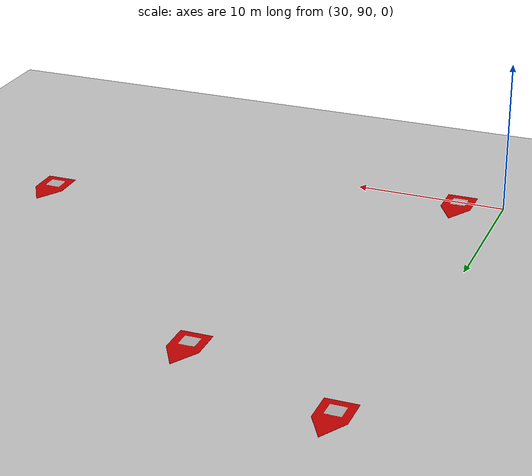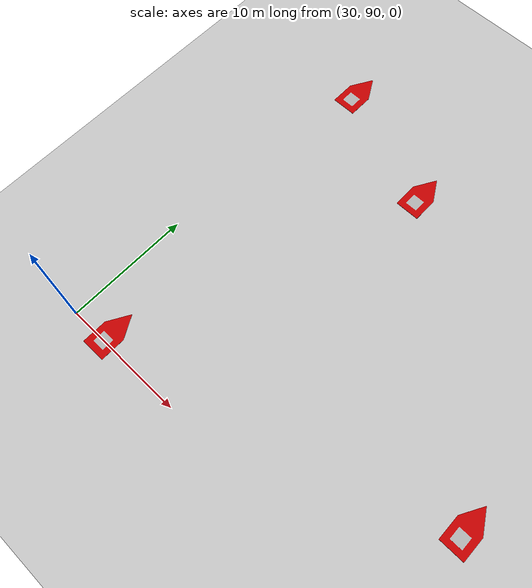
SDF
<sdf version="1.7">
 <world name="default">
  <model name="ground_plane">
   <static>1</static>
   <link name="link">
    <collision name="collision">
     <geometry><plane><normal>0 0 1</normal><size>5000 5000</size></plane></geometry>
     <surface><friction><ode><mu>1</mu><mu2>1</mu2></ode></friction></surface>
    </collision>
    <visual name="runway">
     <pose>0 0 0.005 0 0 -1.5707</pose>
     <cast_shadows>0</cast_shadows>
     <geometry><plane><normal>0 0 1</normal><size>1829 45</size></plane></geometry>
     <material>
      <script><uri>file://media/materials/scripts/gazebo.material</uri><name>Gazebo/Runway</name></script>
     </material>
    </visual>
    <visual name="grass">
     <pose>0 0 -0.1 0 -0 0</pose>
     <cast_shadows>0</cast_shadows>
     <geometry><plane><normal>0 0 1</normal><size>5000 5000</size></plane></geometry>
     <material>
      <script><uri>file://media/materials/scripts/gazebo.material</uri><name>Gazebo/Grass</name></script>
     </material>
    </visual>
   </link>
  </model>
  <model name="biao_12_0_clone_16_clone_0_clone_168">
   <link name="link_0">
    <inertial>
     <mass>1</mass>
     <inertia>
      <ixx>0.166667</ixx>
      <ixy>0</ixy>
      <ixz>0</ixz>
      <iyy>0.166667</iyy>
      <iyz>0</iyz>
      <izz>0.166667</izz>
     </inertia>
    </inertial>
    <visual name="visual">
     <geometry>
      <mesh><uri>/home/lzc/lzc-code/src/simulation/models/biao/12/12.dae</uri><scale>1 1 1</scale></mesh>
     </geometry>
    </visual>
    <collision name="collision">
     <geometry>
      <mesh><uri>/home/lzc/lzc-code/src/simulation/models/biao/12/12.dae</uri><scale>1 1 1</scale></mesh>
     </geometry>
     <surface>
      <friction>
       <ode><mu>1</mu><mu2>1</mu2><fdir1>0 0 0</fdir1><slip1>0</slip1><slip2>0</slip2></ode>
       <torsional>
        <coefficient>1</coefficient>
        <patch_radius>0</patch_radius>
        <surface_radius>0</surface_radius>
        <use_patch_radius>1</use_patch_radius>
        <ode><slip>0</slip></ode>
       </torsional>
      </friction>
      <bounce><restitution_coefficient>0</restitution_coefficient><threshold>1e+06</threshold></bounce>
      <contact>
       <collide_without_contact>0</collide_without_contact>
       <collide_without_contact_bitmask>1</collide_without_contact_bitmask>
       <collide_bitmask>1</collide_bitmask>
       <ode>
        <soft_cfm>0</soft_cfm>
        <soft_erp>0.2</soft_erp>
        <kp>1e+13</kp>
        <kd>1</kd>
        <max_vel>0.01</max_vel>
        <min_depth>0</min_depth>
       </ode>
       <bullet>
        <split_impulse>1</split_impulse>
        <split_impulse_penetration_threshold>-0.01</split_impulse_penetration_threshold>
        <soft_cfm>0</soft_cfm>
        <soft_erp>0.2</soft_erp>
        <kp>1e+13</kp>
        <kd>1</kd>
       </bullet>
      </contact>
     </surface>
    </collision>
   </link>
   <static>0</static>
   <pose>59.4779 97 0.011 0 -0 0</pose>
  </model>
  <model name="biao_12_0_clone_16_clone_0_clone_169">
   <link name="link_0">
    <inertial>
     <mass>1</mass>
     <inertia>
      <ixx>0.166667</ixx>
      <ixy>0</ixy>
      <ixz>0</ixz>
      <iyy>0.166667</iyy>
      <iyz>0</iyz>
      <izz>0.166667</izz>
     </inertia>
    </inertial>
    <visual name="visual">
     <geometry>
      <mesh><uri>/home/lzc/lzc-code/src/simulation/models/biao/12/12.dae</uri><scale>1 1 1</scale></mesh>
     </geometry>
    </visual>
    <collision name="collision">
     <geometry>
      <mesh><uri>/home/lzc/lzc-code/src/simulation/models/biao/12/12.dae</uri><scale>1 1 1</scale></mesh>
     </geometry>
     <surface>
      <friction>
       <ode><mu>1</mu><mu2>1</mu2><fdir1>0 0 0</fdir1><slip1>0</slip1><slip2>0</slip2></ode>
       <torsional>
        <coefficient>1</coefficient>
        <patch_radius>0</patch_radius>
        <surface_radius>0</surface_radius>
        <use_patch_radius>1</use_patch_radius>
        <ode><slip>0</slip></ode>
       </torsional>
      </friction>
      <bounce><restitution_coefficient>0</restitution_coefficient><threshold>1e+06</threshold></bounce>
      <contact>
       <collide_without_contact>0</collide_without_contact>
       <collide_without_contact_bitmask>1</collide_without_contact_bitmask>
       <collide_bitmask>1</collide_bitmask>
       <ode>
        <soft_cfm>0</soft_cfm>
        <soft_erp>0.2</soft_erp>
        <kp>1e+13</kp>
        <kd>1</kd>
        <max_vel>0.01</max_vel>
        <min_depth>0</min_depth>
       </ode>
       <bullet>
        <split_impulse>1</split_impulse>
        <split_impulse_penetration_threshold>-0.01</split_impulse_penetration_threshold>
        <soft_cfm>0</soft_cfm>
        <soft_erp>0.2</soft_erp>
        <kp>1e+13</kp>
        <kd>1</kd>
       </bullet>
      </contact>
     </surface>
    </collision>
   </link>
   <static>0</static>
   <pose>42 114 0.011 0 -0 0</pose>
  </model>
  <model name="biao_12_0_clone_16_clone_0_clone_170">
   <link name="link_0">
    <inertial>
     <mass>1</mass>
     <inertia>
      <ixx>0.166667</ixx>
      <ixy>0</ixy>
      <ixz>0</ixz>
      <iyy>0.166667</iyy>
      <iyz>0</iyz>
      <izz>0.166667</izz>
     </inertia>
    </inertial>
    <visual name="visual">
     <geometry>
      <mesh><uri>/home/lzc/lzc-code/src/simulation/models/biao/12/12.dae</uri><scale>1 1 1</scale></mesh>
     </geometry>
    </visual>
    <collision name="collision">
     <geometry>
      <mesh><uri>/home/lzc/lzc-code/src/simulation/models/biao/12/12.dae</uri><scale>1 1 1</scale></mesh>
     </geometry>
     <surface>
      <friction>
       <ode><mu>1</mu><mu2>1</mu2><fdir1>0 0 0</fdir1><slip1>0</slip1><slip2>0</slip2></ode>
       <torsional>
        <coefficient>1</coefficient>
        <patch_radius>0</patch_radius>
        <surface_radius>0</surface_radius>
        <use_patch_radius>1</use_patch_radius>
        <ode><slip>0</slip></ode>
       </torsional>
      </friction>
      <bounce><restitution_coefficient>0</restitution_coefficient><threshold>1e+06</threshold></bounce>
      <contact>
       <collide_without_contact>0</collide_without_contact>
       <collide_without_contact_bitmask>1</collide_without_contact_bitmask>
       <collide_bitmask>1</collide_bitmask>
       <ode>
        <soft_cfm>0</soft_cfm>
        <soft_erp>0.2</soft_erp>
        <kp>1e+13</kp>
        <kd>1</kd>
        <max_vel>0.01</max_vel>
        <min_depth>0</min_depth>
       </ode>
       <bullet>
        <split_impulse>1</split_impulse>
        <split_impulse_penetration_threshold>-0.01</split_impulse_penetration_threshold>
        <soft_cfm>0</soft_cfm>
        <soft_erp>0.2</soft_erp>
        <kp>1e+13</kp>
        <kd>1</kd>
       </bullet>
      </contact>
     </surface>
    </collision>
   </link>
   <static>0</static>
   <pose>32 118 0.010964 0 -0 0</pose>
  </model>
  <model name="biao_12_0_clone_16_clone_0_clone_188">
   <link name="link_0">
    <inertial>
     <mass>1</mass>
     <inertia>
      <ixx>0.166667</ixx>
      <ixy>0</ixy>
      <ixz>0</ixz>
      <iyy>0.166667</iyy>
      <iyz>0</iyz>
      <izz>0.166667</izz>
     </inertia>
    </inertial>
    <visual name="visual">
     <geometry>
      <mesh><uri>/home/lzc/lzc-code/src/simulation/models/biao/12/12.dae</uri><scale>1 1 1</scale></mesh>
     </geometry>
    </visual>
    <collision name="collision">
     <geometry>
      <mesh><uri>/home/lzc/lzc-code/src/simulation/models/biao/12/12.dae</uri><scale>1 1 1</scale></mesh>
     </geometry>
     <surface>
      <friction>
       <ode><mu>1</mu><mu2>1</mu2><fdir1>0 0 0</fdir1><slip1>0</slip1><slip2>0</slip2></ode>
       <torsional>
        <coefficient>1</coefficient>
        <patch_radius>0</patch_radius>
        <surface_radius>0</surface_radius>
        <use_patch_radius>1</use_patch_radius>
        <ode><slip>0</slip></ode>
       </torsional>
      </friction>
      <bounce><restitution_coefficient>0</restitution_coefficient><threshold>1e+06</threshold></bounce>
      <contact>
       <collide_without_contact>0</collide_without_contact>
       <collide_without_contact_bitmask>1</collide_without_contact_bitmask>
       <collide_bitmask>1</collide_bitmask>
       <ode>
        <soft_cfm>0</soft_cfm>
        <soft_erp>0.2</soft_erp>
        <kp>1e+13</kp>
        <kd>1</kd>
        <max_vel>0.01</max_vel>
        <min_depth>0</min_depth>
       </ode>
       <bullet>
        <split_impulse>1</split_impulse>
        <split_impulse_penetration_threshold>-0.01</split_impulse_penetration_threshold>
        <soft_cfm>0</soft_cfm>
        <soft_erp>0.2</soft_erp>
        <kp>1e+13</kp>
        <kd>1</kd>
       </bullet>
      </contact>
     </surface>
    </collision>
   </link>
   <static>0</static>
   <pose>33 90 0.011 0 -0 0</pose>
  </model>
 </world>
</sdf>
